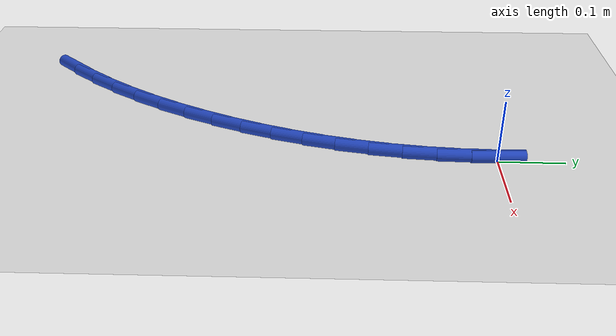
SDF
<sdf version="1.6">
 <world name="default">
  <model name="ground_plane">
   <static>1</static>
   <link name="link">
    <collision name="collision">
     <geometry><plane><normal>0 0 1</normal><size>100 100</size></plane></geometry>
     <surface><friction><ode><mu>100</mu><mu2>50</mu2></ode></friction></surface>
    </collision>
    <visual name="visual">
     <cast_shadows>0</cast_shadows>
     <geometry><plane><normal>0 0 1</normal><size>100 100</size></plane></geometry>
     <material>
      <script><uri>file://media/materials/scripts/gazebo.material</uri><name>Gazebo/WhiteGlow</name></script>
     </material>
    </visual>
   </link>
  </model>
  <model name="line">
   <link name="link_0">
    <pose>-1.734723475976807e-18 1.1102230246251565e-16 0.01 0 1.57 -1.542638726486872</pose>
    <collision name="collision">
     <geometry><cylinder><radius>0.01</radius><length>0.08</length></cylinder></geometry>
    </collision>
    <visual name="visual">
     <material>
      <script><name>Gazebo/Blue</name><uri>file://media/materials/scripts/gazebo.material</uri></script>
     </material>
     <geometry><cylinder><radius>0.01</radius><length>0.08</length></cylinder></geometry>
    </visual>
   </link>
   <link name="link_125">
    <pose>-0.26956077949575624 -0.6899630545797416 0.01 0 1.57 0.8429979186073725</pose>
    <collision name="collision">
     <geometry><cylinder><radius>0.01</radius><length>0.08</length></cylinder></geometry>
    </collision>
    <visual name="visual">
     <material>
      <script><name>Gazebo/Blue</name><uri>file://media/materials/scripts/gazebo.material</uri></script>
     </material>
     <geometry><cylinder><radius>0.01</radius><length>0.08</length></cylinder></geometry>
    </visual>
   </link>
   <link name="link_126">
    <pose>-0.2361938476729091 -0.6525125379845459 0.01 0 1.57 0.9033016893630432</pose>
    <collision name="collision">
     <geometry><cylinder><radius>0.01</radius><length>0.08</length></cylinder></geometry>
    </collision>
    <visual name="visual">
     <material>
      <script><name>Gazebo/Blue</name><uri>file://media/materials/scripts/gazebo.material</uri></script>
     </material>
     <geometry><cylinder><radius>0.01</radius><length>0.08</length></cylinder></geometry>
    </visual>
   </link>
   <link name="link_127">
    <pose>-0.20482920523432 -0.6127190017752604 0.01 0 1.57 0.9592937337400046</pose>
    <collision name="collision">
     <geometry><cylinder><radius>0.01</radius><length>0.08</length></cylinder></geometry>
    </collision>
    <visual name="visual">
     <material>
      <script><name>Gazebo/Blue</name><uri>file://media/materials/scripts/gazebo.material</uri></script>
     </material>
     <geometry><cylinder><radius>0.01</radius><length>0.08</length></cylinder></geometry>
    </visual>
   </link>
   <link name="link_128">
    <pose>-0.17551276936127863 -0.570907535645224 0.01 0 1.57 1.0116662517380264</pose>
    <collision name="collision">
     <geometry><cylinder><radius>0.01</radius><length>0.08</length></cylinder></geometry>
    </collision>
    <visual name="visual">
     <material>
      <script><name>Gazebo/Blue</name><uri>file://media/materials/scripts/gazebo.material</uri></script>
     </material>
     <geometry><cylinder><radius>0.01</radius><length>0.08</length></cylinder></geometry>
    </visual>
   </link>
   <link name="link_129">
    <pose>-0.1482904572350753 -0.5274032292877762 0.01 0 1.57 1.0610901181724157</pose>
    <collision name="collision">
     <geometry><cylinder><radius>0.01</radius><length>0.08</length></cylinder></geometry>
    </collision>
    <visual name="visual">
     <material>
      <script><name>Gazebo/Blue</name><uri>file://media/materials/scripts/gazebo.material</uri></script>
     </material>
     <geometry><cylinder><radius>0.01</radius><length>0.08</length></cylinder></geometry>
    </visual>
   </link>
   <link name="link_130">
    <pose>-0.12320818603700029 -0.4825311723962566 0.01 0 1.57 1.1082129209951013</pose>
    <collision name="collision">
     <geometry><cylinder><radius>0.01</radius><length>0.08</length></cylinder></geometry>
    </collision>
    <visual name="visual">
     <material>
      <script><name>Gazebo/Blue</name><uri>file://media/materials/scripts/gazebo.material</uri></script>
     </material>
     <geometry><cylinder><radius>0.01</radius><length>0.08</length></cylinder></geometry>
    </visual>
   </link>
   <link name="link_131">
    <pose>-0.1003118729483436 -0.43661645466400384 0.01 0 1.57 1.1539399443891494</pose>
    <collision name="collision">
     <geometry><cylinder><radius>0.01</radius><length>0.08</length></cylinder></geometry>
    </collision>
    <visual name="visual">
     <material>
      <script><name>Gazebo/Blue</name><uri>file://media/materials/scripts/gazebo.material</uri></script>
     </material>
     <geometry><cylinder><radius>0.01</radius><length>0.08</length></cylinder></geometry>
    </visual>
   </link>
   <link name="link_132">
    <pose>-0.0796472142071115 -0.3899490675568424 0.01 0 1.57 1.2000001663342004</pose>
    <collision name="collision">
     <geometry><cylinder><radius>0.01</radius><length>0.08</length></cylinder></geometry>
    </collision>
    <visual name="visual">
     <material>
      <script><name>Gazebo/Blue</name><uri>file://media/materials/scripts/gazebo.material</uri></script>
     </material>
     <geometry><cylinder><radius>0.01</radius><length>0.08</length></cylinder></geometry>
    </visual>
   </link>
   <link name="link_133">
    <pose>-0.06125885090397649 -0.34265138576413384 0.01 0 1.57 1.2468680382414314</pose>
    <collision name="collision">
     <geometry><cylinder><radius>0.01</radius><length>0.08</length></cylinder></geometry>
    </collision>
    <visual name="visual">
     <material>
      <script><name>Gazebo/Blue</name><uri>file://media/materials/scripts/gazebo.material</uri></script>
     </material>
     <geometry><cylinder><radius>0.01</radius><length>0.08</length></cylinder></geometry>
    </visual>
   </link>
   <link name="link_134">
    <pose>-0.04519110950315706 -0.2947958035882119 0.01 0 1.57 1.2945815641705365</pose>
    <collision name="collision">
     <geometry><cylinder><radius>0.01</radius><length>0.08</length></cylinder></geometry>
    </collision>
    <visual name="visual">
     <material>
      <script><name>Gazebo/Blue</name><uri>file://media/materials/scripts/gazebo.material</uri></script>
     </material>
     <geometry><cylinder><radius>0.01</radius><length>0.08</length></cylinder></geometry>
    </visual>
   </link>
   <link name="link_135">
    <pose>-0.03148831641453037 -0.24645470669898312 0.01 0 1.57 1.3431691533583257</pose>
    <collision name="collision">
     <geometry><cylinder><radius>0.01</radius><length>0.08</length></cylinder></geometry>
    </collision>
    <visual name="visual">
     <material>
      <script><name>Gazebo/Blue</name><uri>file://media/materials/scripts/gazebo.material</uri></script>
     </material>
     <geometry><cylinder><radius>0.01</radius><length>0.08</length></cylinder></geometry>
    </visual>
   </link>
   <link name="link_136">
    <pose>-0.020194798047974218 -0.19770048076635607 0.01 0 1.57 1.3926476976252742</pose>
    <collision name="collision">
     <geometry><cylinder><radius>0.01</radius><length>0.08</length></cylinder></geometry>
    </collision>
    <visual name="visual">
     <material>
      <script><name>Gazebo/Blue</name><uri>file://media/materials/scripts/gazebo.material</uri></script>
     </material>
     <geometry><cylinder><radius>0.01</radius><length>0.08</length></cylinder></geometry>
    </visual>
   </link>
   <link name="link_137">
    <pose>-0.011354880813365739 -0.1486055114602371 0.01 0 1.57 1.4430205473309845</pose>
    <collision name="collision">
     <geometry><cylinder><radius>0.01</radius><length>0.08</length></cylinder></geometry>
    </collision>
    <visual name="visual">
     <material>
      <script><name>Gazebo/Blue</name><uri>file://media/materials/scripts/gazebo.material</uri></script>
     </material>
     <geometry><cylinder><radius>0.01</radius><length>0.08</length></cylinder></geometry>
    </visual>
   </link>
   <link name="link_138">
    <pose>-0.005012891120582286 -0.09924218445053347 0.01 0 1.57 1.4942755415003863</pose>
    <collision name="collision">
     <geometry><cylinder><radius>0.01</radius><length>0.08</length></cylinder></geometry>
    </collision>
    <visual name="visual">
     <material>
      <script><name>Gazebo/Blue</name><uri>file://media/materials/scripts/gazebo.material</uri></script>
     </material>
     <geometry><cylinder><radius>0.01</radius><length>0.08</length></cylinder></geometry>
    </visual>
   </link>
   <link name="link_139">
    <pose>-0.0012131553795012451 -0.049682885407152225 0.01 0 1.57 1.546383204524899</pose>
    <collision name="collision">
     <geometry><cylinder><radius>0.01</radius><length>0.08</length></cylinder></geometry>
    </collision>
    <visual name="visual">
     <material>
      <script><name>Gazebo/Blue</name><uri>file://media/materials/scripts/gazebo.material</uri></script>
     </material>
     <geometry><cylinder><radius>0.01</radius><length>0.08</length></cylinder></geometry>
    </visual>
   </link>
   <link name="link_140">
    <pose>1.9081958235744878e-17 2.636779683484747e-16 0.01 0 1.57 -1.542297410753657</pose>
    <collision name="collision">
     <geometry><cylinder><radius>0.01</radius><length>0.08</length></cylinder></geometry>
    </collision>
    <visual name="visual">
     <material>
      <script><name>Gazebo/Blue</name><uri>file://media/materials/scripts/gazebo.material</uri></script>
     </material>
     <geometry><cylinder><radius>0.01</radius><length>0.08</length></cylinder></geometry>
    </visual>
   </link>
  </model>
 </world>
</sdf>
